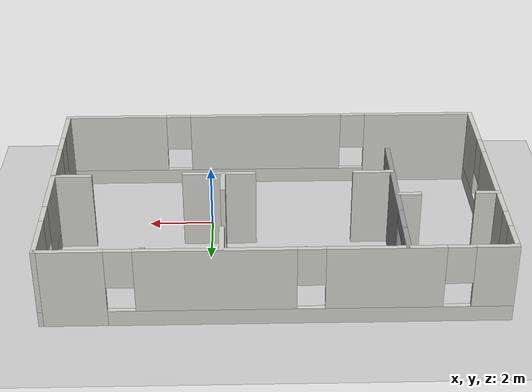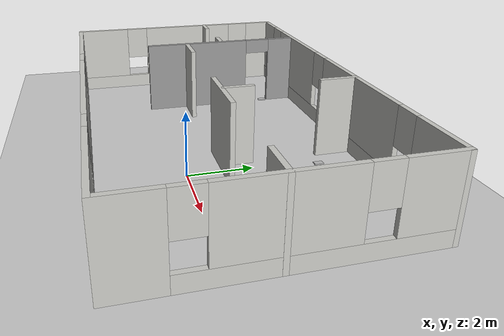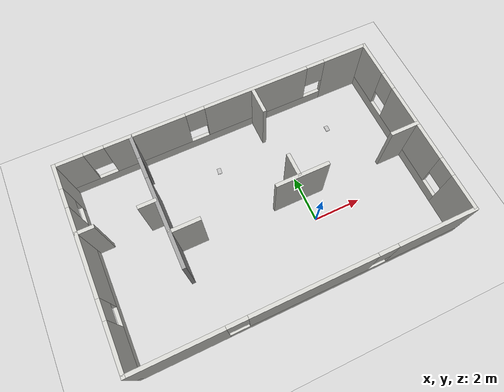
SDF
<sdf version="1.7">
 <world name="default">
  <light name="sun" type="directional">
   <pose>0 0 10 0 -0 0</pose>
   <diffuse>0.8 0.8 0.8 1</diffuse>
   <specular>0.2 0.2 0.2 1</specular>
   <attenuation>
    <range>1000</range>
    <constant>0.9</constant>
    <linear>0.01</linear>
    <quadratic>0.001</quadratic>
   </attenuation>
   <direction>-0.5 0.1 -0.9</direction>
   <spot><inner_angle>0</inner_angle><outer_angle>0</outer_angle><falloff>0</falloff></spot>
  </light>
  <model name="ground_plane">
   <static>1</static>
   <link name="link">
    <collision name="collision">
     <geometry><plane><normal>0 0 1</normal><size>100 100</size></plane></geometry>
     <surface><friction><ode><mu>100</mu><mu2>50</mu2></ode></friction></surface>
    </collision>
    <visual name="visual">
     <cast_shadows>0</cast_shadows>
     <geometry><plane><normal>0 0 1</normal><size>100 100</size></plane></geometry>
     <material>
      <script><uri>file://media/materials/scripts/gazebo.material</uri><name>Gazebo/Grey</name></script>
     </material>
    </visual>
   </link>
  </model>
  <gravity>0 0 -9.8</gravity>
  <magnetic_field>6e-06 2.3e-05 -4.2e-05</magnetic_field>
  <atmosphere type="adiabatic"/>
  <physics type="ode">
   <max_step_size>0.001</max_step_size>
   <real_time_factor>1</real_time_factor>
   <real_time_update_rate>1000</real_time_update_rate>
  </physics>
  <scene><ambient>0.4 0.4 0.4 1</ambient><background>0.7 0.7 0.7 1</background><shadows>1</shadows></scene>
  <audio><device>default</device></audio>
  <spherical_coordinates>
   <surface_model>EARTH_WGS84</surface_model>
   <latitude_deg>0</latitude_deg>
   <longitude_deg>0</longitude_deg>
   <elevation>0</elevation>
   <heading_deg>0</heading_deg>
  </spherical_coordinates>
  <model name="book_10">
   <link name="cover">
    <pose>0 -0.000108 0.015405 0 -0 0</pose>
    <visual name="visual">
     <geometry><box><size>0.245 0.16 0.03</size></box></geometry>
     <material>
      <script>
       <uri>model://book_10/materials/scripts</uri>
       <uri>model://book_10/materials/textures</uri>
       <name>book_10</name>
      </script>
     </material>
    </visual>
    <collision name="collision"><geometry><box><size>0.245 0.16 0.03</size></box></geometry></collision>
   </link>
   <link name="page">
    <pose>0 0.000608 0.015405 0 -0 0</pose>
    <visual name="visual">
     <geometry><box><size>0.24502 0.15862 0.028</size></box></geometry>
     <material>
      <lighting>1</lighting>
      <ambient>1 1 1 1</ambient>
      <diffuse>1 1 1 1</diffuse>
      <specular>0.01 0.01 0.01 1</specular>
      <emissive>0 0 0 1</emissive>
      <shader type="vertex"><normal_map>__default__</normal_map></shader>
     </material>
    </visual>
    <collision name="collision"><geometry><box><size>0.245 0.16 0.03</size></box></geometry></collision>
   </link>
   <static>1</static>
   <pose>-2.8831 3.22533 1.04702 0 -0 1.43256</pose>
  </model>
  <model name="book_2">
   <link name="cover">
    <pose>0 -0.000108 0.015405 0 -0 0</pose>
    <visual name="visual">
     <geometry><box><size>0.245 0.16 0.03</size></box></geometry>
     <material>
      <script>
       <uri>model://book_2/materials/scripts</uri>
       <uri>model://book_2/materials/textures</uri>
       <name>book_2</name>
      </script>
     </material>
    </visual>
    <collision name="collision"><geometry><box><size>0.245 0.16 0.03</size></box></geometry></collision>
   </link>
   <link name="page">
    <pose>0 0.000608 0.015405 0 -0 0</pose>
    <visual name="visual">
     <geometry><box><size>0.24502 0.15862 0.028</size></box></geometry>
     <material>
      <lighting>1</lighting>
      <ambient>1 1 1 1</ambient>
      <diffuse>1 1 1 1</diffuse>
      <specular>0.01 0.01 0.01 1</specular>
      <emissive>0 0 0 1</emissive>
      <shader type="vertex"><normal_map>__default__</normal_map></shader>
     </material>
    </visual>
    <collision name="collision"><geometry><box><size>0.245 0.16 0.03</size></box></geometry></collision>
   </link>
   <static>1</static>
   <pose>2.02368 3.14608 1.02892 0 -0 1.55345</pose>
  </model>
  <model name="structure_office">
   <pose>-1.91817 1.31793 0 0 -0 0</pose>
   <link name="Wall_13">
    <pose>-3.66132 1.22768 0 0 -0 -1.5708</pose>
    <visual name="Wall_13_Visual_0">
     <pose>-2.33666 0 1.25 0 -0 0</pose>
     <geometry><box><size>1.07668 0.15 2.5</size></box></geometry>
     <material>
      <script><uri>file://media/materials/scripts/gazebo.material</uri><name>Gazebo/Grey</name></script>
      <ambient>1 1 1 1</ambient>
     </material>
     <meta><layer>0</layer></meta>
    </visual>
    <collision name="Wall_13_Collision_0">
     <geometry><box><size>1.07668 0.15 2.5</size></box></geometry>
     <pose>-2.33666 0 1.25 0 -0 0</pose>
    </collision>
    <visual name="Wall_13_Visual_1">
     <pose>0.988338 0 1.25 0 -0 0</pose>
     <geometry><box><size>3.77332 0.15 2.5</size></box></geometry>
     <material>
      <script><uri>file://media/materials/scripts/gazebo.material</uri><name>Gazebo/Grey</name></script>
      <ambient>1 1 1 1</ambient>
     </material>
     <meta><layer>0</layer></meta>
    </visual>
    <collision name="Wall_13_Collision_1">
     <geometry><box><size>3.77332 0.15 2.5</size></box></geometry>
     <pose>0.988338 0 1.25 0 -0 0</pose>
    </collision>
    <visual name="Wall_13_Visual_2">
     <pose>-1.34832 0 2.25 0 -0 0</pose>
     <geometry><box><size>0.9 0.15 0.5</size></box></geometry>
     <material>
      <script><uri>file://media/materials/scripts/gazebo.material</uri><name>Gazebo/Grey</name></script>
      <ambient>1 1 1 1</ambient>
     </material>
     <meta><layer>0</layer></meta>
    </visual>
    <collision name="Wall_13_Collision_2">
     <geometry><box><size>0.9 0.15 0.5</size></box></geometry>
     <pose>-1.34832 0 2.25 0 -0 0</pose>
    </collision>
   </link>
   <link name="Wall_17">
    <collision name="Wall_17_Collision">
     <geometry><box><size>1.25 0.15 2.5</size></box></geometry>
     <pose>0 0 1.25 0 -0 0</pose>
    </collision>
    <visual name="Wall_17_Visual">
     <pose>0 0 1.25 0 -0 0</pose>
     <geometry><box><size>1.25 0.15 2.5</size></box></geometry>
     <material>
      <script><uri>file://media/materials/scripts/gazebo.material</uri><name>Gazebo/CeilingTiled</name></script>
      <ambient>1 1 1 1</ambient>
     </material>
     <meta><layer>0</layer></meta>
    </visual>
    <pose>-3.07634 -0.187423 0 0 -0 0</pose>
   </link>
   <link name="Wall_19">
    <collision name="Wall_19_Collision">
     <geometry><box><size>2.25 0.15 2.5</size></box></geometry>
     <pose>0 0 1.25 0 -0 0</pose>
    </collision>
    <visual name="Wall_19_Visual">
     <pose>0 0 1.25 0 -0 0</pose>
     <geometry><box><size>2.25 0.15 2.5</size></box></geometry>
     <material>
      <script><uri>file://media/materials/scripts/gazebo.material</uri><name>Gazebo/CeilingTiled</name></script>
      <ambient>1 1 1 1</ambient>
     </material>
     <meta><layer>0</layer></meta>
    </visual>
    <pose>1.63877 -0.187423 0 0 -0 0</pose>
   </link>
   <link name="Wall_21">
    <collision name="Wall_21_Collision">
     <geometry><box><size>1.25 0.15 2.5</size></box></geometry>
     <pose>0 0 1.25 0 -0 0</pose>
    </collision>
    <visual name="Wall_21_Visual">
     <pose>0 0 1.25 0 -0 0</pose>
     <geometry><box><size>1.25 0.15 2.5</size></box></geometry>
     <material>
      <script><uri>file://media/materials/scripts/gazebo.material</uri><name>Gazebo/CeilingTiled</name></script>
      <ambient>1 1 1 1</ambient>
     </material>
     <meta><layer>0</layer></meta>
    </visual>
    <pose>6.12531 -0.117463 0 0 -0 3.14159</pose>
   </link>
   <link name="Wall_23">
    <collision name="Wall_23_Collision">
     <geometry><box><size>1.25 0.15 2.5</size></box></geometry>
     <pose>0 0 1.25 0 -0 0</pose>
    </collision>
    <visual name="Wall_23_Visual">
     <pose>0 0 1.25 0 -0 0</pose>
     <geometry><box><size>1.25 0.15 2.5</size></box></geometry>
     <material>
      <script><uri>file://media/materials/scripts/gazebo.material</uri><name>Gazebo/CeilingTiled</name></script>
      <ambient>1 1 1 1</ambient>
     </material>
     <meta><layer>0</layer></meta>
    </visual>
    <pose>1.51574 3.49517 0 0 -0 -1.5708</pose>
   </link>
   <link name="Wall_26">
    <collision name="Wall_26_Collision">
     <geometry><box><size>1 0.15 2.5</size></box></geometry>
     <pose>0 0 1.25 0 -0 0</pose>
    </collision>
    <visual name="Wall_26_Visual">
     <pose>0 0 1.25 0 -0 0</pose>
     <geometry><box><size>1 0.15 2.5</size></box></geometry>
     <material>
      <script><uri>file://media/materials/scripts/gazebo.material</uri><name>Gazebo/CeilingTiled</name></script>
      <ambient>1 1 1 1</ambient>
     </material>
     <meta><layer>0</layer></meta>
    </visual>
    <pose>1.51574 0.307537 0 0 -0 1.5708</pose>
   </link>
   <link name="Wall_32">
    <collision name="Wall_32_Collision">
     <geometry><box><size>0.75 0.15 2.5</size></box></geometry>
     <pose>0 0 1.25 0 -0 0</pose>
    </collision>
    <visual name="Wall_32_Visual">
     <pose>0 0 1.25 0 -0 0</pose>
     <geometry><box><size>0.75 0.15 2.5</size></box></geometry>
     <material>
      <script><uri>file://media/materials/scripts/gazebo.material</uri><name>Gazebo/CeilingTiled</name></script>
      <ambient>1 1 1 1</ambient>
     </material>
     <meta><layer>0</layer></meta>
    </visual>
    <pose>-6.36961 1.14182 0 0 -0 0</pose>
   </link>
   <link name="Wall_34">
    <collision name="Wall_34_Collision">
     <geometry><box><size>0.75 0.15 2.5</size></box></geometry>
     <pose>0 0 1.25 0 -0 0</pose>
    </collision>
    <visual name="Wall_34_Visual">
     <pose>0 0 1.25 0 -0 0</pose>
     <geometry><box><size>0.75 0.15 2.5</size></box></geometry>
     <material>
      <script><uri>file://media/materials/scripts/gazebo.material</uri><name>Gazebo/CeilingTiled</name></script>
      <ambient>1 1 1 1</ambient>
     </material>
     <meta><layer>0</layer></meta>
    </visual>
    <pose>-4.01379 1.15931 0 0 -0 3.14159</pose>
   </link>
   <link name="Wall_4">
    <pose>-6.67531 0 0 0 -0 -1.5708</pose>
    <visual name="Wall_4_Visual_0">
     <pose>-3.57674 0 1.25 0 -0 0</pose>
     <geometry><box><size>1.09652 0.15 2.5</size></box></geometry>
     <material>
      <script><uri>file://media/materials/scripts/gazebo.material</uri><name>Gazebo/CeilingTiled</name></script>
      <ambient>1 1 1 1</ambient>
     </material>
     <meta><layer>0</layer></meta>
    </visual>
    <collision name="Wall_4_Collision_0">
     <geometry><box><size>1.09652 0.15 2.5</size></box></geometry>
     <pose>-3.57674 0 1.25 0 -0 0</pose>
    </collision>
    <visual name="Wall_4_Visual_1">
     <pose>0.548262 0 0.25 0 -0 0</pose>
     <geometry><box><size>7.15348 0.15 0.5</size></box></geometry>
     <material>
      <script><uri>file://media/materials/scripts/gazebo.material</uri><name>Gazebo/CeilingTiled</name></script>
      <ambient>1 1 1 1</ambient>
     </material>
     <meta><layer>0</layer></meta>
    </visual>
    <collision name="Wall_4_Collision_1">
     <geometry><box><size>7.15348 0.15 0.5</size></box></geometry>
     <pose>0.548262 0 0.25 0 -0 0</pose>
    </collision>
    <visual name="Wall_4_Visual_2">
     <pose>-0.433474 0 1.5 0 -0 0</pose>
     <geometry><box><size>3.59001 0.15 2</size></box></geometry>
     <material>
      <script><uri>file://media/materials/scripts/gazebo.material</uri><name>Gazebo/CeilingTiled</name></script>
      <ambient>1 1 1 1</ambient>
     </material>
     <meta><layer>0</layer></meta>
    </visual>
    <collision name="Wall_4_Collision_2">
     <geometry><box><size>3.59001 0.15 2</size></box></geometry>
     <pose>-0.433474 0 1.5 0 -0 0</pose>
    </collision>
    <visual name="Wall_4_Visual_3">
     <pose>3.14326 0 1.5 0 -0 0</pose>
     <geometry><box><size>1.96347 0.15 2</size></box></geometry>
     <material>
      <script><uri>file://media/materials/scripts/gazebo.material</uri><name>Gazebo/CeilingTiled</name></script>
      <ambient>1 1 1 1</ambient>
     </material>
     <meta><layer>0</layer></meta>
    </visual>
    <collision name="Wall_4_Collision_3">
     <geometry><box><size>1.96347 0.15 2</size></box></geometry>
     <pose>3.14326 0 1.5 0 -0 0</pose>
    </collision>
    <visual name="Wall_4_Visual_4">
     <pose>-2.62848 0 1.9 0 -0 0</pose>
     <geometry><box><size>0.8 0.15 1.2</size></box></geometry>
     <material>
      <script><uri>file://media/materials/scripts/gazebo.material</uri><name>Gazebo/CeilingTiled</name></script>
      <ambient>1 1 1 1</ambient>
     </material>
     <meta><layer>0</layer></meta>
    </visual>
    <collision name="Wall_4_Collision_4">
     <geometry><box><size>0.8 0.15 1.2</size></box></geometry>
     <pose>-2.62848 0 1.9 0 -0 0</pose>
    </collision>
    <visual name="Wall_4_Visual_5">
     <pose>1.76153 0 1.9 0 -0 0</pose>
     <geometry><box><size>0.8 0.15 1.2</size></box></geometry>
     <material>
      <script><uri>file://media/materials/scripts/gazebo.material</uri><name>Gazebo/CeilingTiled</name></script>
      <ambient>1 1 1 1</ambient>
     </material>
     <meta><layer>0</layer></meta>
    </visual>
    <collision name="Wall_4_Collision_5">
     <geometry><box><size>0.8 0.15 1.2</size></box></geometry>
     <pose>1.76153 0 1.9 0 -0 0</pose>
    </collision>
   </link>
   <link name="Wall_5">
    <pose>-0.000308 -4.05 0 0 -0 0</pose>
    <visual name="Wall_5_Visual_0">
     <pose>-4.95076 0 1.25 0 -0 0</pose>
     <geometry><box><size>3.59847 0.15 2.5</size></box></geometry>
     <material>
      <script><uri>file://media/materials/scripts/gazebo.material</uri><name>Gazebo/CeilingTiled</name></script>
      <ambient>1 1 1 1</ambient>
     </material>
     <meta><layer>0</layer></meta>
    </visual>
    <collision name="Wall_5_Collision_0">
     <geometry><box><size>3.59847 0.15 2.5</size></box></geometry>
     <pose>-4.95076 0 1.25 0 -0 0</pose>
    </collision>
    <visual name="Wall_5_Visual_1">
     <pose>1.79924 0 0.25 0 -0 0</pose>
     <geometry><box><size>9.90153 0.15 0.5</size></box></geometry>
     <material>
      <script><uri>file://media/materials/scripts/gazebo.material</uri><name>Gazebo/CeilingTiled</name></script>
      <ambient>1 1 1 1</ambient>
     </material>
     <meta><layer>0</layer></meta>
    </visual>
    <collision name="Wall_5_Collision_1">
     <geometry><box><size>9.90153 0.15 0.5</size></box></geometry>
     <pose>1.79924 0 0.25 0 -0 0</pose>
    </collision>
    <visual name="Wall_5_Visual_2">
     <pose>0.143077 0 1.5 0 -0 0</pose>
     <geometry><box><size>4.98921 0.15 2</size></box></geometry>
     <material>
      <script><uri>file://media/materials/scripts/gazebo.material</uri><name>Gazebo/CeilingTiled</name></script>
      <ambient>1 1 1 1</ambient>
     </material>
     <meta><layer>0</layer></meta>
    </visual>
    <collision name="Wall_5_Collision_2">
     <geometry><box><size>4.98921 0.15 2</size></box></geometry>
     <pose>0.143077 0 1.5 0 -0 0</pose>
    </collision>
    <visual name="Wall_5_Visual_3">
     <pose>5.09384 0 1.5 0 -0 0</pose>
     <geometry><box><size>3.31232 0.15 2</size></box></geometry>
     <material>
      <script><uri>file://media/materials/scripts/gazebo.material</uri><name>Gazebo/CeilingTiled</name></script>
      <ambient>1 1 1 1</ambient>
     </material>
     <meta><layer>0</layer></meta>
    </visual>
    <collision name="Wall_5_Collision_3">
     <geometry><box><size>3.31232 0.15 2</size></box></geometry>
     <pose>5.09384 0 1.5 0 -0 0</pose>
    </collision>
    <visual name="Wall_5_Visual_4">
     <pose>-2.75153 0 1.9 0 -0 0</pose>
     <geometry><box><size>0.8 0.15 1.2</size></box></geometry>
     <material>
      <script><uri>file://media/materials/scripts/gazebo.material</uri><name>Gazebo/CeilingTiled</name></script>
      <ambient>1 1 1 1</ambient>
     </material>
     <meta><layer>0</layer></meta>
    </visual>
    <collision name="Wall_5_Collision_4">
     <geometry><box><size>0.8 0.15 1.2</size></box></geometry>
     <pose>-2.75153 0 1.9 0 -0 0</pose>
    </collision>
    <visual name="Wall_5_Visual_5">
     <pose>3.03768 0 1.9 0 -0 0</pose>
     <geometry><box><size>0.8 0.15 1.2</size></box></geometry>
     <material>
      <script><uri>file://media/materials/scripts/gazebo.material</uri><name>Gazebo/CeilingTiled</name></script>
      <ambient>1 1 1 1</ambient>
     </material>
     <meta><layer>0</layer></meta>
    </visual>
    <collision name="Wall_5_Collision_5">
     <geometry><box><size>0.8 0.15 1.2</size></box></geometry>
     <pose>3.03768 0 1.9 0 -0 0</pose>
    </collision>
   </link>
   <link name="Wall_6">
    <pose>6.67469 0 0 0 -0 1.5708</pose>
    <visual name="Wall_6_Visual_0">
     <pose>-3.36189 0 1.25 0 -0 0</pose>
     <geometry><box><size>1.52622 0.15 2.5</size></box></geometry>
     <material>
      <script><uri>file://media/materials/scripts/gazebo.material</uri><name>Gazebo/CeilingTiled</name></script>
      <ambient>1 1 1 1</ambient>
     </material>
     <meta><layer>0</layer></meta>
    </visual>
    <collision name="Wall_6_Collision_0">
     <geometry><box><size>1.52622 0.15 2.5</size></box></geometry>
     <pose>-3.36189 0 1.25 0 -0 0</pose>
    </collision>
    <visual name="Wall_6_Visual_1">
     <pose>0.76311 0 0.25 0 -0 0</pose>
     <geometry><box><size>6.72378 0.15 0.5</size></box></geometry>
     <material>
      <script><uri>file://media/materials/scripts/gazebo.material</uri><name>Gazebo/CeilingTiled</name></script>
      <ambient>1 1 1 1</ambient>
     </material>
     <meta><layer>0</layer></meta>
    </visual>
    <collision name="Wall_6_Collision_1">
     <geometry><box><size>6.72378 0.15 0.5</size></box></geometry>
     <pose>0.76311 0 0.25 0 -0 0</pose>
    </collision>
    <visual name="Wall_6_Visual_2">
     <pose>-0.064993 0 1.5 0 -0 0</pose>
     <geometry><box><size>3.46758 0.15 2</size></box></geometry>
     <material>
      <script><uri>file://media/materials/scripts/gazebo.material</uri><name>Gazebo/CeilingTiled</name></script>
      <ambient>1 1 1 1</ambient>
     </material>
     <meta><layer>0</layer></meta>
    </visual>
    <collision name="Wall_6_Collision_2">
     <geometry><box><size>3.46758 0.15 2</size></box></geometry>
     <pose>-0.064993 0 1.5 0 -0 0</pose>
    </collision>
    <visual name="Wall_6_Visual_3">
     <pose>3.2969 0 1.5 0 -0 0</pose>
     <geometry><box><size>1.6562 0.15 2</size></box></geometry>
     <material>
      <script><uri>file://media/materials/scripts/gazebo.material</uri><name>Gazebo/CeilingTiled</name></script>
      <ambient>1 1 1 1</ambient>
     </material>
     <meta><layer>0</layer></meta>
    </visual>
    <collision name="Wall_6_Collision_3">
     <geometry><box><size>1.6562 0.15 2</size></box></geometry>
     <pose>3.2969 0 1.5 0 -0 0</pose>
    </collision>
    <visual name="Wall_6_Visual_4">
     <pose>-2.19878 0 1.9 0 -0 0</pose>
     <geometry><box><size>0.8 0.15 1.2</size></box></geometry>
     <material>
      <script><uri>file://media/materials/scripts/gazebo.material</uri><name>Gazebo/CeilingTiled</name></script>
      <ambient>1 1 1 1</ambient>
     </material>
     <meta><layer>0</layer></meta>
    </visual>
    <collision name="Wall_6_Collision_4">
     <geometry><box><size>0.8 0.15 1.2</size></box></geometry>
     <pose>-2.19878 0 1.9 0 -0 0</pose>
    </collision>
    <visual name="Wall_6_Visual_5">
     <pose>2.0688 0 1.9 0 -0 0</pose>
     <geometry><box><size>0.8 0.15 1.2</size></box></geometry>
     <material>
      <script><uri>file://media/materials/scripts/gazebo.material</uri><name>Gazebo/CeilingTiled</name></script>
      <ambient>1 1 1 1</ambient>
     </material>
     <meta><layer>0</layer></meta>
    </visual>
    <collision name="Wall_6_Collision_5">
     <geometry><box><size>0.8 0.15 1.2</size></box></geometry>
     <pose>2.0688 0 1.9 0 -0 0</pose>
    </collision>
   </link>
   <link name="Wall_7">
    <pose>-0.000308 4.05 0 0 -0 3.14159</pose>
    <visual name="Wall_7_Visual_0">
     <pose>-5.75846 0 1.25 0 -0 0</pose>
     <geometry><box><size>1.98307 0.15 2.5</size></box></geometry>
     <material>
      <script><uri>file://media/materials/scripts/gazebo.material</uri><name>Gazebo/CeilingTiled</name></script>
      <ambient>1 1 1 1</ambient>
     </material>
     <meta><layer>0</layer></meta>
    </visual>
    <collision name="Wall_7_Collision_0">
     <geometry><box><size>1.98307 0.15 2.5</size></box></geometry>
     <pose>-5.75846 0 1.25 0 -0 0</pose>
    </collision>
    <visual name="Wall_7_Visual_1">
     <pose>0.991536 0 0.25 0 -0 0</pose>
     <geometry><box><size>11.5169 0.15 0.5</size></box></geometry>
     <material>
      <script><uri>file://media/materials/scripts/gazebo.material</uri><name>Gazebo/CeilingTiled</name></script>
      <ambient>1 1 1 1</ambient>
     </material>
     <meta><layer>0</layer></meta>
    </visual>
    <collision name="Wall_7_Collision_1">
     <geometry><box><size>11.5169 0.15 0.5</size></box></geometry>
     <pose>0.991536 0 0.25 0 -0 0</pose>
    </collision>
    <visual name="Wall_7_Visual_2">
     <pose>-1.69095 0 1.5 0 -0 0</pose>
     <geometry><box><size>4.55196 0.15 2</size></box></geometry>
     <material>
      <script><uri>file://media/materials/scripts/gazebo.material</uri><name>Gazebo/CeilingTiled</name></script>
      <ambient>1 1 1 1</ambient>
     </material>
     <meta><layer>0</layer></meta>
    </visual>
    <collision name="Wall_7_Collision_2">
     <geometry><box><size>4.55196 0.15 2</size></box></geometry>
     <pose>-1.69095 0 1.5 0 -0 0</pose>
    </collision>
    <visual name="Wall_7_Visual_3">
     <pose>3.0576 0 1.5 0 -0 0</pose>
     <geometry><box><size>3.34515 0.15 2</size></box></geometry>
     <material>
      <script><uri>file://media/materials/scripts/gazebo.material</uri><name>Gazebo/CeilingTiled</name></script>
      <ambient>1 1 1 1</ambient>
     </material>
     <meta><layer>0</layer></meta>
    </visual>
    <collision name="Wall_7_Collision_3">
     <geometry><box><size>3.34515 0.15 2</size></box></geometry>
     <pose>3.0576 0 1.5 0 -0 0</pose>
    </collision>
    <visual name="Wall_7_Visual_4">
     <pose>6.14009 0 1.5 0 -0 0</pose>
     <geometry><box><size>1.21982 0.15 2</size></box></geometry>
     <material>
      <script><uri>file://media/materials/scripts/gazebo.material</uri><name>Gazebo/CeilingTiled</name></script>
      <ambient>1 1 1 1</ambient>
     </material>
     <meta><layer>0</layer></meta>
    </visual>
    <collision name="Wall_7_Collision_4">
     <geometry><box><size>1.21982 0.15 2</size></box></geometry>
     <pose>6.14009 0 1.5 0 -0 0</pose>
    </collision>
    <visual name="Wall_7_Visual_5">
     <pose>-4.36693 0 1.9 0 -0 0</pose>
     <geometry><box><size>0.8 0.15 1.2</size></box></geometry>
     <material>
      <script><uri>file://media/materials/scripts/gazebo.material</uri><name>Gazebo/CeilingTiled</name></script>
      <ambient>1 1 1 1</ambient>
     </material>
     <meta><layer>0</layer></meta>
    </visual>
    <collision name="Wall_7_Collision_5">
     <geometry><box><size>0.8 0.15 1.2</size></box></geometry>
     <pose>-4.36693 0 1.9 0 -0 0</pose>
    </collision>
    <visual name="Wall_7_Visual_6">
     <pose>0.985032 0 1.9 0 -0 0</pose>
     <geometry><box><size>0.8 0.15 1.2</size></box></geometry>
     <material>
      <script><uri>file://media/materials/scripts/gazebo.material</uri><name>Gazebo/CeilingTiled</name></script>
      <ambient>1 1 1 1</ambient>
     </material>
     <meta><layer>0</layer></meta>
    </visual>
    <collision name="Wall_7_Collision_6">
     <geometry><box><size>0.8 0.15 1.2</size></box></geometry>
     <pose>0.985032 0 1.9 0 -0 0</pose>
    </collision>
    <visual name="Wall_7_Visual_7">
     <pose>5.13018 0 1.9 0 -0 0</pose>
     <geometry><box><size>0.8 0.15 1.2</size></box></geometry>
     <material>
      <script><uri>file://media/materials/scripts/gazebo.material</uri><name>Gazebo/CeilingTiled</name></script>
      <ambient>1 1 1 1</ambient>
     </material>
     <meta><layer>0</layer></meta>
    </visual>
    <collision name="Wall_7_Collision_7">
     <geometry><box><size>0.8 0.15 1.2</size></box></geometry>
     <pose>5.13018 0 1.9 0 -0 0</pose>
    </collision>
   </link>
   <static>1</static>
  </model>
 </world>
</sdf>
